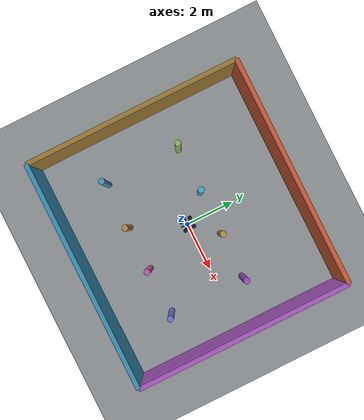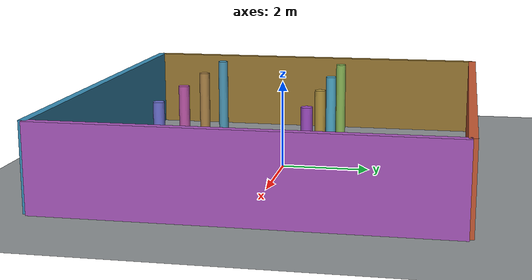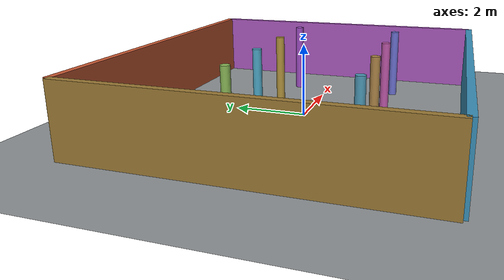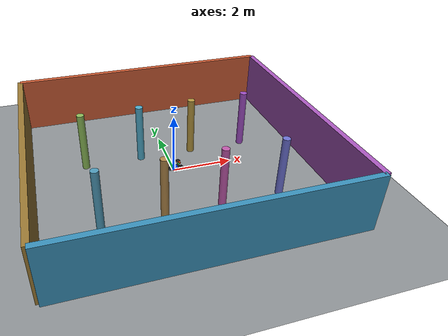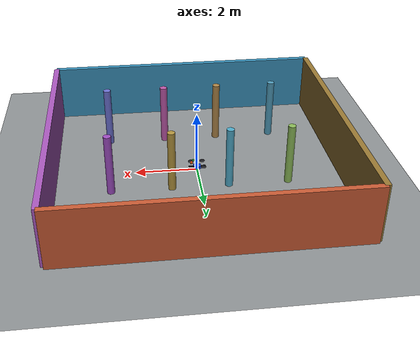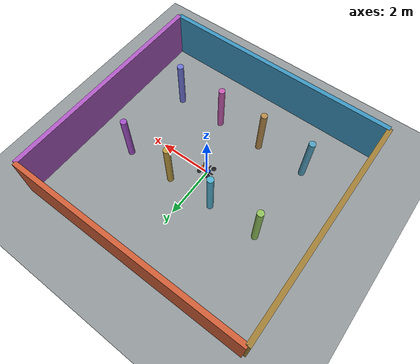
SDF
<?xml version="1.0" ?>
<sdf version="1.9">
  <world name="uav_harmonic_demo">
    <physics name="fast_step" type="ignored">
      <max_step_size>0.002</max_step_size>
      <real_time_factor>1.0</real_time_factor>
    </physics>

    <plugin filename="gz-sim-physics-system" name="gz::sim::systems::Physics"/>
    <plugin filename="gz-sim-user-commands-system" name="gz::sim::systems::UserCommands"/>
    <plugin filename="gz-sim-scene-broadcaster-system" name="gz::sim::systems::SceneBroadcaster"/>
    <plugin filename="gz-sim-sensors-system" name="gz::sim::systems::Sensors">
      <render_engine>ogre2</render_engine>
    </plugin>
    <plugin filename="gz-sim-imu-system" name="gz::sim::systems::Imu"/>

    <!-- Keep terrain readable on faces that are not reached by the sun. -->
    <scene>
      <ambient>0.45 0.45 0.45 1</ambient>
      <background>0.70 0.75 0.80 1</background>
      <shadows>true</shadows>
    </scene>

    <light type="directional" name="sun">
      <pose>0 0 8 0 0 0</pose>
      <cast_shadows>true</cast_shadows>
      <diffuse>0.9 0.9 0.85 1</diffuse>
      <specular>0.2 0.2 0.2 1</specular>
      <direction>-0.4 0.3 -0.9</direction>
    </light>

    <model name="ground_plane">
      <static>true</static>
      <link name="link">
        <collision name="collision">
          <geometry>
            <plane>
              <normal>0 0 1</normal>
              <size>18 18</size>
            </plane>
          </geometry>
          <surface>
            <friction>
              <ode>
                <mu>20</mu>
                <mu2>20</mu2>
              </ode>
            </friction>
          </surface>
        </collision>
        <visual name="visual">
          <geometry>
            <plane>
              <normal>0 0 1</normal>
              <size>18 18</size>
            </plane>
          </geometry>
          <material>
            <ambient>0.55 0.57 0.58 1</ambient>
            <diffuse>0.55 0.57 0.58 1</diffuse>
          </material>
        </visual>
      </link>
    </model>

    <model name="frame_front">
      <static>true</static>
      <pose>0 4.3 0.95 0 0 0</pose>
      <link name="link">
        <collision name="collision"><geometry><box><size>9.2 0.18 1.9</size></box></geometry></collision>
        <visual name="visual"><geometry><box><size>9.2 0.18 1.9</size></box></geometry><material><ambient>0.58 0.24 0.18 1</ambient><diffuse>0.78 0.35 0.20 1</diffuse></material></visual>
      </link>
    </model>

    <model name="frame_back">
      <static>true</static>
      <pose>0 -4.3 0.95 0 0 0</pose>
      <link name="link">
        <collision name="collision"><geometry><box><size>9.2 0.18 1.9</size></box></geometry></collision>
        <visual name="visual"><geometry><box><size>9.2 0.18 1.9</size></box></geometry><material><ambient>0.22 0.42 0.55 1</ambient><diffuse>0.22 0.56 0.72 1</diffuse></material></visual>
      </link>
    </model>

    <model name="frame_left">
      <static>true</static>
      <pose>-4.6 0 0.95 0 0 0</pose>
      <link name="link">
        <collision name="collision"><geometry><box><size>0.18 8.6 1.9</size></box></geometry></collision>
        <visual name="visual"><geometry><box><size>0.18 8.6 1.9</size></box></geometry><material><ambient>0.45 0.36 0.16 1</ambient><diffuse>0.60 0.47 0.20 1</diffuse></material></visual>
      </link>
    </model>

    <model name="frame_right">
      <static>true</static>
      <pose>4.6 0 0.95 0 0 0</pose>
      <link name="link">
        <collision name="collision"><geometry><box><size>0.18 8.6 1.9</size></box></geometry></collision>
        <visual name="visual"><geometry><box><size>0.18 8.6 1.9</size></box></geometry><material><ambient>0.48 0.28 0.52 1</ambient><diffuse>0.66 0.34 0.74 1</diffuse></material></visual>
      </link>
    </model>

    <model name="column_00">
      <static>true</static>
      <pose>-2.8 -2.1 1.0 0 0 0</pose>
      <link name="link"><collision name="collision"><geometry><cylinder><radius>0.12</radius><length>2.0</length></cylinder></geometry></collision><visual name="visual"><geometry><cylinder><radius>0.12</radius><length>2.0</length></cylinder></geometry><material><ambient>0.26 0.44 0.52 1</ambient><diffuse>0.30 0.60 0.72 1</diffuse></material></visual></link>
    </model>

    <model name="column_01">
      <static>true</static>
      <pose>-0.9 -2.1 1.0 0 0 0</pose>
      <link name="link"><collision name="collision"><geometry><cylinder><radius>0.12</radius><length>2.0</length></cylinder></geometry></collision><visual name="visual"><geometry><cylinder><radius>0.12</radius><length>2.0</length></cylinder></geometry><material><ambient>0.44 0.34 0.20 1</ambient><diffuse>0.68 0.52 0.28 1</diffuse></material></visual></link>
    </model>

    <model name="column_02">
      <static>true</static>
      <pose>0.9 -2.1 1.0 0 0 0</pose>
      <link name="link"><collision name="collision"><geometry><cylinder><radius>0.12</radius><length>2.0</length></cylinder></geometry></collision><visual name="visual"><geometry><cylinder><radius>0.12</radius><length>2.0</length></cylinder></geometry><material><ambient>0.50 0.24 0.46 1</ambient><diffuse>0.74 0.34 0.66 1</diffuse></material></visual></link>
    </model>

    <model name="column_03">
      <static>true</static>
      <pose>2.8 -2.1 1.0 0 0 0</pose>
      <link name="link"><collision name="collision"><geometry><cylinder><radius>0.12</radius><length>2.0</length></cylinder></geometry></collision><visual name="visual"><geometry><cylinder><radius>0.12</radius><length>2.0</length></cylinder></geometry><material><ambient>0.28 0.30 0.62 1</ambient><diffuse>0.42 0.44 0.82 1</diffuse></material></visual></link>
    </model>

    <model name="column_10">
      <static>true</static>
      <pose>-2.8 1.0 1.0 0 0 0</pose>
      <link name="link"><collision name="collision"><geometry><cylinder><radius>0.12</radius><length>2.0</length></cylinder></geometry></collision><visual name="visual"><geometry><cylinder><radius>0.12</radius><length>2.0</length></cylinder></geometry><material><ambient>0.36 0.52 0.20 1</ambient><diffuse>0.54 0.72 0.34 1</diffuse></material></visual></link>
    </model>

    <model name="column_11">
      <static>true</static>
      <pose>-0.9 1.0 1.0 0 0 0</pose>
      <link name="link"><collision name="collision"><geometry><cylinder><radius>0.12</radius><length>2.0</length></cylinder></geometry></collision><visual name="visual"><geometry><cylinder><radius>0.12</radius><length>2.0</length></cylinder></geometry><material><ambient>0.22 0.48 0.56 1</ambient><diffuse>0.30 0.66 0.78 1</diffuse></material></visual></link>
    </model>

    <model name="column_12">
      <static>true</static>
      <pose>0.9 1.0 1.0 0 0 0</pose>
      <link name="link"><collision name="collision"><geometry><cylinder><radius>0.12</radius><length>2.0</length></cylinder></geometry></collision><visual name="visual"><geometry><cylinder><radius>0.12</radius><length>2.0</length></cylinder></geometry><material><ambient>0.50 0.40 0.16 1</ambient><diffuse>0.70 0.58 0.24 1</diffuse></material></visual></link>
    </model>

    <model name="column_13">
      <static>true</static>
      <pose>2.8 1.0 1.0 0 0 0</pose>
      <link name="link"><collision name="collision"><geometry><cylinder><radius>0.12</radius><length>2.0</length></cylinder></geometry></collision><visual name="visual"><geometry><cylinder><radius>0.12</radius><length>2.0</length></cylinder></geometry><material><ambient>0.42 0.22 0.56 1</ambient><diffuse>0.62 0.30 0.76 1</diffuse></material></visual></link>
    </model>

    <include>
      <uri>model://uav_quad_mid360</uri>
      <name>uav_quad</name>
      <!-- Initial model placement for sensor and scene validation. -->
      <pose>0 0 0.11 0 0 0</pose>
    </include>
  </world>
</sdf>

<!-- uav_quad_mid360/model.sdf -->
<sdf version="1.9">
  <model name="uav_quad_mid360" xmlns:gz="http://gazebosim.org/schema">
    <link name="base_link">
      <inertial>
        <mass>1.5</mass>
        <inertia>
          <ixx>0.035</ixx>
          <iyy>0.035</iyy>
          <izz>0.06</izz>
        </inertia>
      </inertial>
      <collision name="collision">
        <geometry><box><size>0.55 0.55 0.10</size></box></geometry>
      </collision>
      <visual name="body_fuselage">
        <geometry><box><size>0.24 0.20 0.08</size></box></geometry>
        <material>
          <ambient>0.04 0.18 0.55 1</ambient>
          <diffuse>0.05 0.25 0.85 1</diffuse>
        </material>
      </visual>
      <visual name="arm_x">
        <pose>0 0 0.02 0 0 0</pose>
        <geometry><box><size>0.55 0.04 0.02</size></box></geometry>
        <material>
          <ambient>0.10 0.10 0.12 1</ambient>
          <diffuse>0.16 0.16 0.18 1</diffuse>
        </material>
      </visual>
      <visual name="arm_y">
        <pose>0 0 0.02 0 0 1.57079632679</pose>
        <geometry><box><size>0.55 0.04 0.02</size></box></geometry>
        <material>
          <ambient>0.10 0.10 0.12 1</ambient>
          <diffuse>0.16 0.16 0.18 1</diffuse>
        </material>
      </visual>
      <visual name="rotor_front_left">
        <pose>0.19 0.19 0.09 0 0 0</pose>
        <geometry><cylinder><radius>0.08</radius><length>0.02</length></cylinder></geometry>
        <material><ambient>0.05 0.05 0.06 1</ambient><diffuse>0.10 0.10 0.12 1</diffuse></material>
      </visual>
      <visual name="rotor_front_right">
        <pose>0.19 -0.19 0.09 0 0 0</pose>
        <geometry><cylinder><radius>0.08</radius><length>0.02</length></cylinder></geometry>
        <material><ambient>0.05 0.05 0.06 1</ambient><diffuse>0.10 0.10 0.12 1</diffuse></material>
      </visual>
      <visual name="rotor_rear_left">
        <pose>-0.19 0.19 0.09 0 0 0</pose>
        <geometry><cylinder><radius>0.08</radius><length>0.02</length></cylinder></geometry>
        <material><ambient>0.05 0.05 0.06 1</ambient><diffuse>0.10 0.10 0.12 1</diffuse></material>
      </visual>
      <visual name="rotor_rear_right">
        <pose>-0.19 -0.19 0.09 0 0 0</pose>
        <geometry><cylinder><radius>0.08</radius><length>0.02</length></cylinder></geometry>
        <material><ambient>0.05 0.05 0.06 1</ambient><diffuse>0.10 0.10 0.12 1</diffuse></material>
      </visual>
    </link>

    <!-- Gazebo cameras look along local +X. Positive pitch rotates +X toward
         the ground, so this forward-looking OAK-D mount has an 18-degree
         downward tilt relative to the UAV body. -->
    <link name="oakd_camera_link">
      <pose relative_to="base_link">0.18 0 0.16 0 0.31415926536 0</pose>
      <inertial>
        <mass>0.1</mass>
        <inertia>
          <ixx>0.0002</ixx>
          <iyy>0.0002</iyy>
          <izz>0.0002</izz>
        </inertia>
      </inertial>
      <visual name="camera_body">
        <geometry><box><size>0.07 0.10 0.035</size></box></geometry>
        <material>
          <ambient>0.55 0.15 0.01 1</ambient>
          <diffuse>0.95 0.32 0.03 1</diffuse>
        </material>
      </visual>
      <visual name="left_lens">
        <pose>0.038 0.028 0 0 0 0</pose>
        <geometry><box><size>0.008 0.022 0.022</size></box></geometry>
        <material>
          <ambient>0.01 0.01 0.015 1</ambient>
          <diffuse>0.01 0.01 0.015 1</diffuse>
        </material>
      </visual>
      <visual name="right_lens">
        <pose>0.038 -0.028 0 0 0 0</pose>
        <geometry><box><size>0.008 0.022 0.022</size></box></geometry>
        <material>
          <ambient>0.01 0.01 0.015 1</ambient>
          <diffuse>0.01 0.01 0.015 1</diffuse>
        </material>
      </visual>
      <sensor name="oakd_imu" type="imu">
        <always_on>true</always_on>
        <update_rate>200</update_rate>
        <topic>/oakd/imu/raw</topic>
        <gz_frame_id>oakd_imu_link</gz_frame_id>
      </sensor>
      <sensor name="oakd_rgbd" type="rgbd_camera">
        <always_on>true</always_on>
        <update_rate>15</update_rate>
        <topic>rgbd_camera</topic>
        <camera>
          <horizontal_fov>1.21</horizontal_fov>
          <image>
            <width>640</width>
            <height>400</height>
          </image>
          <clip>
            <near>0.15</near>
            <far>8.0</far>
          </clip>
          <optical_frame_id>oakd_camera_optical_frame</optical_frame_id>
        </camera>
      </sensor>
    </link>
    <joint name="oakd_fixed_joint" type="fixed">
      <parent>base_link</parent>
      <child>oakd_camera_link</child>
    </joint>

    <!-- MID360 sensor mount. Keep this pose in sync with the
         base_link -> mid360_link static transform published by
         gazebo_harmonic_nav.launch.py. -->
    <link name="mid360_link">
      <pose relative_to="base_link">0.113137085 -0.113137085 0.18 0.7853981634 0 0.5235987756</pose>
      <inertial>
        <mass>0.03</mass>
        <inertia>
          <ixx>0.00001</ixx>
          <iyy>0.00001</iyy>
          <izz>0.00001</izz>
        </inertia>
      </inertial>
      <visual name="mid360_body">
        <geometry><cylinder><radius>0.035</radius><length>0.06</length></cylinder></geometry>
        <material>
          <ambient>0.10 0.35 0.10 1</ambient>
          <diffuse>0.15 0.55 0.20 1</diffuse>
        </material>
      </visual>
      <sensor name="mid360_lidar" type="gpu_lidar">
        <always_on>true</always_on>
        <update_rate>20</update_rate>
        <topic>/mid360</topic>
        <lidar>
          <scan>
            <horizontal>
              <samples>1875</samples>
              <resolution>1</resolution>
              <min_angle>-3.14159265359</min_angle>
              <max_angle>3.14159265359</max_angle>
            </horizontal>
            <vertical>
              <samples>32</samples>
              <resolution>1</resolution>
              <min_angle>-0.12217304764</min_angle>
              <max_angle>0.90757121104</max_angle>
            </vertical>
          </scan>
          <range>
            <min>0.1</min>
            <max>40.0</max>
            <resolution>0.02</resolution>
          </range>
        </lidar>
        <visualize>true</visualize>
      </sensor>
      <sensor name="mid360_imu" type="imu">
        <always_on>true</always_on>
        <update_rate>200</update_rate>
        <topic>/mid360/imu</topic>
        <gz_frame_id>mid360_link</gz_frame_id>
      </sensor>
    </link>
    <joint name="mid360_fixed_joint" type="fixed">
      <parent>base_link</parent>
      <child>mid360_link</child>
    </joint>

    <plugin filename="gz-sim-velocity-control-system" name="gz::sim::systems::VelocityControl">
      <topic>/cmd_vel</topic>
      <link_name>base_link</link_name>
      <initial_linear>0 0 0</initial_linear>
      <initial_angular>0 0 0</initial_angular>
    </plugin>
    <plugin filename="gz-sim-odometry-publisher-system" name="gz::sim::systems::OdometryPublisher">
      <odom_frame>odom</odom_frame>
      <robot_base_frame>base_link</robot_base_frame>
      <!-- 3D pose is required so nvblox receives the full UAV/camera pose. -->
      <dimensions>3</dimensions>
      <odom_topic>/visual_slam/tracking/odometry</odom_topic>
      <tf_topic>/tf</tf_topic>
      <odom_publish_frequency>50</odom_publish_frequency>
    </plugin>
  </model>
</sdf>
